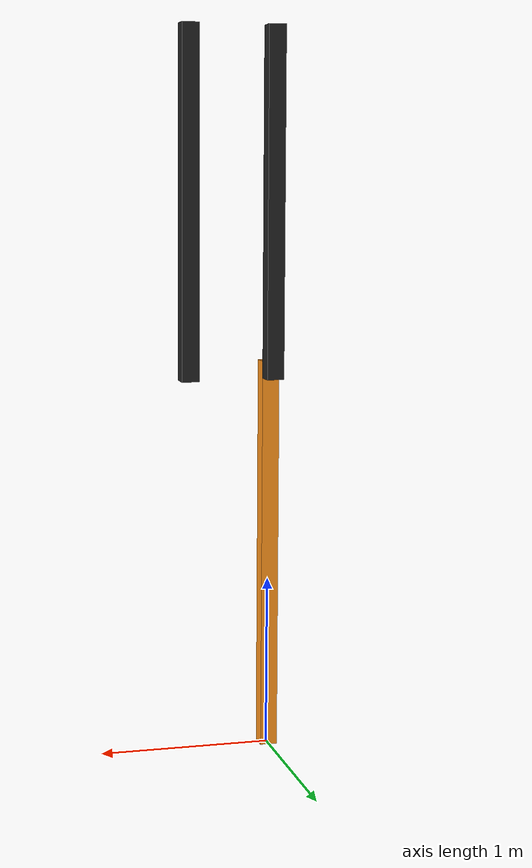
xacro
<?xml version="1.0"?>
<!-- Revolute-Revolute Manipulator -->
<robot name="rrbot" xmlns:xacro="http://www.ros.org/wiki/xacro">

  <!-- Constants for robot dimensions -->
  <xacro:property name="PI" value="3.1415926535897931"/>
  <xacro:property name="mass" value="1" /> <!-- arbitrary value for mass -->
  <xacro:property name="width" value="0.1" /> <!-- Square dimensions (widthxwidth) of beams -->
  <xacro:property name="height1" value="2.3" /> <!-- Link 1 -->
  <xacro:property name="height2" value="2" /> <!-- Link 2 -->
  <xacro:property name="height3" value="2" /> <!-- Link 3 -->
  <xacro:property name="camera_link" value="0.05" /> <!-- Size of square 'camera' box -->
  <xacro:property name="axel_offset" value="0.05" /> <!-- Space btw top of beam and the each joint -->

  <!-- Import all Gazebo-customization elements, including Gazebo colors -->
  <xacro:include filename="$(find rrbot_description)/urdf/rrbot.gazebo" />
  <!-- Import Rviz colors -->
  <xacro:include filename="$(find rrbot_description)/urdf/materials.xacro" />

  <!-- Used for fixing robot to Gazebo 'base_link' -->
  <link name="world"/>

  <joint name="fixed" type="fixed">
    <parent link="world"/>
    <child link="link1"/>
  </joint>

  <!-- Base Link -->
  <link name="link1">
    <collision>
      <origin xyz="0 0 ${height1/2}" rpy="0 0 0"/>
      <geometry>
	<box size="${width} ${width} ${height1}"/>
      </geometry>
    </collision>

    <visual>
      <origin xyz="0 0 ${height1/2}" rpy="0 0 0"/>
      <geometry>
	<box size="${width} ${width} ${height1}"/>
      </geometry>
      <material name="orange"/>
    </visual>

    <inertial>
      <origin xyz="0 0 ${height1/2}" rpy="0 0 0"/>
      <mass value="${mass}"/>
      <inertia
	  ixx="${mass / 12.0 * (width*width + height1*height1)}" ixy="0.0" ixz="0.0"
	  iyy="${mass / 12.0 * (height1*height1 + width*width)}" iyz="0.0"
	  izz="${mass / 12.0 * (width*width + width*width)}"/>
    </inertial>
  </link>

  <joint name="joint1" type="continuous">
    <parent link="link1"/>
    <child link="link2"/>
    <origin xyz="0 ${width} ${height1 - axel_offset}" rpy="0 0 0"/>
    <axis xyz="0 1 0"/>
    <dynamics damping="0.7"/>
  </joint>

  <!-- Middle Link -->
  <link name="link2">
    <collision>
      <origin xyz="0 0 ${height2/2 - axel_offset}" rpy="0 0 0"/>
      <geometry>
	<box size="${width} ${width} ${height2}"/>
      </geometry>
    </collision>

    <visual>
      <origin xyz="0 0 ${height2/2 - axel_offset}" rpy="0 0 0"/>
      <geometry>
	<box size="${width} ${width} ${height2}"/>
      </geometry>
      <material name="black"/>
    </visual>

    <inertial>
      <origin xyz="0 0 ${height2/2 - axel_offset}" rpy="0 0 0"/>
      <mass value="${mass}"/>
      <inertia
	  ixx="${mass / 12.0 * (width*width + height2*height2)}" ixy="0.0" ixz="0.0"
	  iyy="${mass / 12.0 * (height2*height2 + width*width)}" iyz="0.0"
	  izz="${mass / 12.0 * (width*width + width*width)}"/>
    </inertial>
  </link>

  <!-- mimic Link -->
  <joint name="joint1_mimic" type="continuous">
    <parent link="link1"/>
    <child link="link2_mimic"/>
    <origin xyz="0.5 ${width} ${height1 - axel_offset}" rpy="0 0 0"/>
    <axis xyz="0 1 0"/>
    <mimic joint="joint1" multiplier="1.0" offset="0.0" />
  </joint>

  <link name="link2_mimic">
    <collision>
      <origin xyz="0 0 ${height2/2 - axel_offset}" rpy="0 0 0"/>
      <geometry>
  <box size="${width} ${width} ${height2}"/>
      </geometry>
    </collision>

    <visual>
      <origin xyz="0 0 ${height2/2 - axel_offset}" rpy="0 0 0"/>
      <geometry>
  <box size="${width} ${width} ${height2}"/>
      </geometry>
      <material name="black"/>
    </visual>

    <inertial>
      <origin xyz="0 0 ${height2/2 - axel_offset}" rpy="0 0 0"/>
      <mass value="${mass}"/>
      <inertia
    ixx="${mass / 12.0 * (width*width + height2*height2)}" ixy="0.0" ixz="0.0"
    iyy="${mass / 12.0 * (height2*height2 + width*width)}" iyz="0.0"
    izz="${mass / 12.0 * (width*width + width*width)}"/>
    </inertial>

  </link>

  <!-- Top Link -->

  <!-- Hokuyo Laser -->

  <!-- Camera -->

  <!-- generate an optical frame http://www.ros.org/reps/rep-0103.html#suffix-frames
      so that ros and opencv can operate on the camera frame correctly -->
    <!-- these values have to be these values otherwise the gazebo camera image
        won't be aligned properly with the frame it is supposedly originating from -->

  <transmission name="tran1">
    <type>transmission_interface/SimpleTransmission</type>
    <joint name="joint1">
      <hardwareInterface>hardware_interface/EffortJointInterface</hardwareInterface>
    </joint>
    <actuator name="motor1">
      <hardwareInterface>hardware_interface/EffortJointInterface</hardwareInterface>
      <mechanicalReduction>1</mechanicalReduction>
    </actuator>
  </transmission>

  <gazebo>
    <plugin name="mimic_plugin" filename="libgazebo_mimic_plugin.so">
      <joint>joint1</joint>
      <mimicJoint>joint1_mimic</mimicJoint>
      <link>link2</link>
      <mimicLink>link2_mimic</mimicLink>
      <parentLink>link1</parentLink>
      <multiplier>1.0</multiplier>
    </plugin>
  </gazebo>

  <gazebo reference="link2">
    <kp>100000.0</kp>
    <kd>0.0</kd>
    <mu1>10.0</mu1>
    <maxVel>10.0</maxVel>
    <minDepth>0.0001</minDepth>
    <maxContacts>5</maxContacts>
    <selfCollide>false</selfCollide>
  </gazebo>

  <gazebo reference="link2_mimic">
    <kp>100000.0</kp>
    <kd>0.0</kd>
    <mu1>10.0</mu1>
    <maxVel>10.0</maxVel>
    <minDepth>0.0001</minDepth>
    <maxContacts>5</maxContacts>
    <selfCollide>false</selfCollide>
  </gazebo>

</robot>
